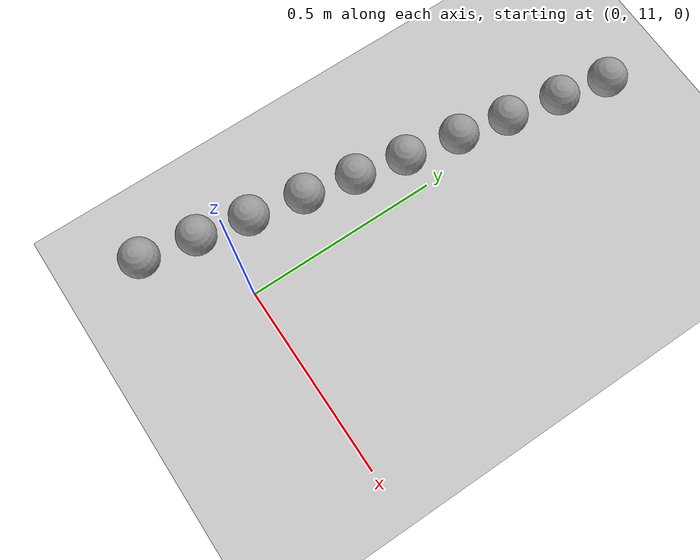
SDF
<sdf version="1.6">
 <world name="default">
  <model name="ground_plane">
   <static>1</static>
   <link name="link">
    <collision name="collision">
     <geometry><plane><normal>0 0 1</normal><size>100 100</size></plane></geometry>
     <surface><friction><ode><mu>100</mu><mu2>50</mu2></ode></friction></surface>
    </collision>
    <visual name="visual">
     <cast_shadows>0</cast_shadows>
     <geometry><plane><normal>0 0 1</normal><size>100 100</size></plane></geometry>
     <material>
      <script><uri>file://media/materials/scripts/gazebo.material</uri><name>Gazebo/Grey</name></script>
     </material>
    </visual>
   </link>
  </model>
  <model name="unit_sphere_0_51">
   <pose>-0.213000 10.820000 0.050000 0 -0 0</pose>
   <link name="link">
    <inertial>
     <mass>1</mass>
     <inertia><ixx>0.1</ixx><ixy>0</ixy><ixz>0</ixz><iyy>0.1</iyy><iyz>0</iyz><izz>0.1</izz></inertia>
    </inertial>
    <collision name="collision"><geometry><sphere><radius>0.050000</radius></sphere></geometry></collision>
    <visual name="visual">
     <geometry><sphere><radius>0.050000</radius></sphere></geometry>
     <material>
      <script><name>Gazebo/Grey</name><uri>file://media/materials/scripts/gazebo.material</uri></script>
     </material>
    </visual>
   </link>
  </model>
  <model name="unit_sphere_0_52">
   <pose>-0.186000 10.960000 0.050000 0 -0 0</pose>
   <link name="link">
    <inertial>
     <mass>1</mass>
     <inertia><ixx>0.1</ixx><ixy>0</ixy><ixz>0</ixz><iyy>0.1</iyy><iyz>0</iyz><izz>0.1</izz></inertia>
    </inertial>
    <collision name="collision"><geometry><sphere><radius>0.050000</radius></sphere></geometry></collision>
    <visual name="visual">
     <geometry><sphere><radius>0.050000</radius></sphere></geometry>
     <material>
      <script><name>Gazebo/Grey</name><uri>file://media/materials/scripts/gazebo.material</uri></script>
     </material>
    </visual>
   </link>
  </model>
  <model name="unit_sphere_0_53">
   <pose>-0.159000 11.090000 0.050000 0 -0 0</pose>
   <link name="link">
    <inertial>
     <mass>1</mass>
     <inertia><ixx>0.1</ixx><ixy>0</ixy><ixz>0</ixz><iyy>0.1</iyy><iyz>0</iyz><izz>0.1</izz></inertia>
    </inertial>
    <collision name="collision"><geometry><sphere><radius>0.050000</radius></sphere></geometry></collision>
    <visual name="visual">
     <geometry><sphere><radius>0.050000</radius></sphere></geometry>
     <material>
      <script><name>Gazebo/Grey</name><uri>file://media/materials/scripts/gazebo.material</uri></script>
     </material>
    </visual>
   </link>
  </model>
  <model name="unit_sphere_0_54">
   <pose>-0.132000 11.230000 0.050000 0 -0 0</pose>
   <link name="link">
    <inertial>
     <mass>1</mass>
     <inertia><ixx>0.1</ixx><ixy>0</ixy><ixz>0</ixz><iyy>0.1</iyy><iyz>0</iyz><izz>0.1</izz></inertia>
    </inertial>
    <collision name="collision"><geometry><sphere><radius>0.050000</radius></sphere></geometry></collision>
    <visual name="visual">
     <geometry><sphere><radius>0.050000</radius></sphere></geometry>
     <material>
      <script><name>Gazebo/Grey</name><uri>file://media/materials/scripts/gazebo.material</uri></script>
     </material>
    </visual>
   </link>
  </model>
  <model name="unit_sphere_0_55">
   <pose>-0.105000 11.360000 0.050000 0 -0 0</pose>
   <link name="link">
    <inertial>
     <mass>1</mass>
     <inertia><ixx>0.1</ixx><ixy>0</ixy><ixz>0</ixz><iyy>0.1</iyy><iyz>0</iyz><izz>0.1</izz></inertia>
    </inertial>
    <collision name="collision"><geometry><sphere><radius>0.050000</radius></sphere></geometry></collision>
    <visual name="visual">
     <geometry><sphere><radius>0.050000</radius></sphere></geometry>
     <material>
      <script><name>Gazebo/Grey</name><uri>file://media/materials/scripts/gazebo.material</uri></script>
     </material>
    </visual>
   </link>
  </model>
  <model name="unit_sphere_0_56">
   <pose>-0.078000 11.490000 0.050000 0 -0 0</pose>
   <link name="link">
    <inertial>
     <mass>1</mass>
     <inertia><ixx>0.1</ixx><ixy>0</ixy><ixz>0</ixz><iyy>0.1</iyy><iyz>0</iyz><izz>0.1</izz></inertia>
    </inertial>
    <collision name="collision"><geometry><sphere><radius>0.050000</radius></sphere></geometry></collision>
    <visual name="visual">
     <geometry><sphere><radius>0.050000</radius></sphere></geometry>
     <material>
      <script><name>Gazebo/Grey</name><uri>file://media/materials/scripts/gazebo.material</uri></script>
     </material>
    </visual>
   </link>
  </model>
  <model name="unit_sphere_0_57">
   <pose>-0.051000 11.630000 0.050000 0 -0 0</pose>
   <link name="link">
    <inertial>
     <mass>1</mass>
     <inertia><ixx>0.1</ixx><ixy>0</ixy><ixz>0</ixz><iyy>0.1</iyy><iyz>0</iyz><izz>0.1</izz></inertia>
    </inertial>
    <collision name="collision"><geometry><sphere><radius>0.050000</radius></sphere></geometry></collision>
    <visual name="visual">
     <geometry><sphere><radius>0.050000</radius></sphere></geometry>
     <material>
      <script><name>Gazebo/Grey</name><uri>file://media/materials/scripts/gazebo.material</uri></script>
     </material>
    </visual>
   </link>
  </model>
  <model name="unit_sphere_0_58">
   <pose>-0.024000 11.760000 0.050000 0 -0 0</pose>
   <link name="link">
    <inertial>
     <mass>1</mass>
     <inertia><ixx>0.1</ixx><ixy>0</ixy><ixz>0</ixz><iyy>0.1</iyy><iyz>0</iyz><izz>0.1</izz></inertia>
    </inertial>
    <collision name="collision"><geometry><sphere><radius>0.050000</radius></sphere></geometry></collision>
    <visual name="visual">
     <geometry><sphere><radius>0.050000</radius></sphere></geometry>
     <material>
      <script><name>Gazebo/Grey</name><uri>file://media/materials/scripts/gazebo.material</uri></script>
     </material>
    </visual>
   </link>
  </model>
  <model name="unit_sphere_0_59">
   <pose>0.003000 11.900000 0.050000 0 -0 0</pose>
   <link name="link">
    <inertial>
     <mass>1</mass>
     <inertia><ixx>0.1</ixx><ixy>0</ixy><ixz>0</ixz><iyy>0.1</iyy><iyz>0</iyz><izz>0.1</izz></inertia>
    </inertial>
    <collision name="collision"><geometry><sphere><radius>0.050000</radius></sphere></geometry></collision>
    <visual name="visual">
     <geometry><sphere><radius>0.050000</radius></sphere></geometry>
     <material>
      <script><name>Gazebo/Grey</name><uri>file://media/materials/scripts/gazebo.material</uri></script>
     </material>
    </visual>
   </link>
  </model>
  <model name="unit_sphere_0_60">
   <pose>0.030000 12.030000 0.050000 0 -0 0</pose>
   <link name="link">
    <inertial>
     <mass>1</mass>
     <inertia><ixx>0.1</ixx><ixy>0</ixy><ixz>0</ixz><iyy>0.1</iyy><iyz>0</iyz><izz>0.1</izz></inertia>
    </inertial>
    <collision name="collision"><geometry><sphere><radius>0.050000</radius></sphere></geometry></collision>
    <visual name="visual">
     <geometry><sphere><radius>0.050000</radius></sphere></geometry>
     <material>
      <script><name>Gazebo/Grey</name><uri>file://media/materials/scripts/gazebo.material</uri></script>
     </material>
    </visual>
   </link>
  </model>
 </world>
</sdf>
